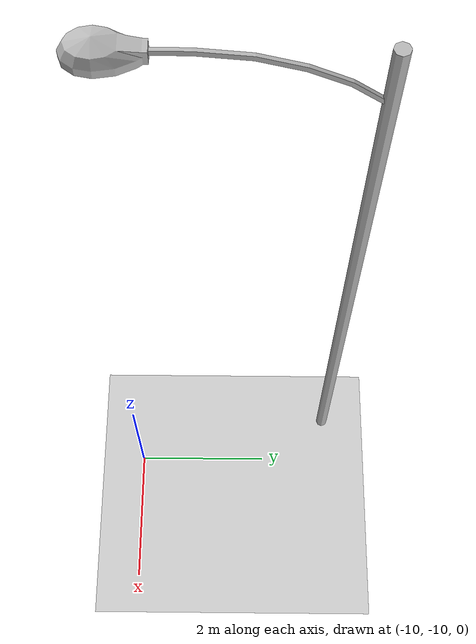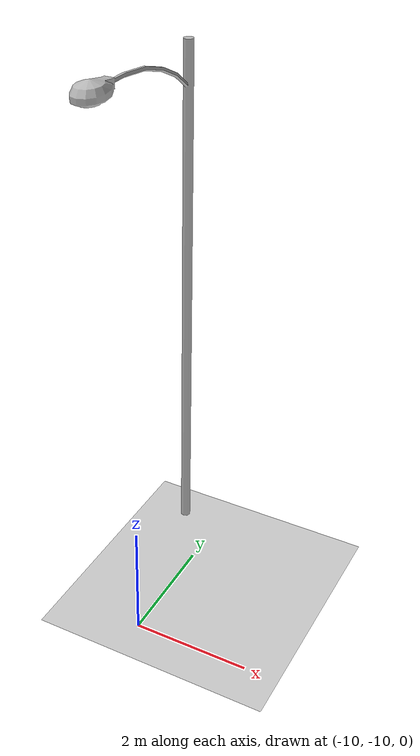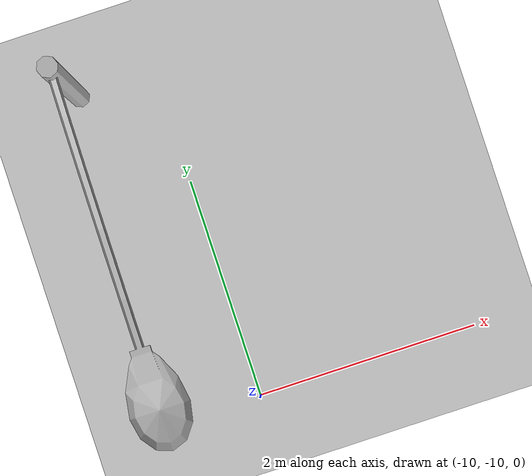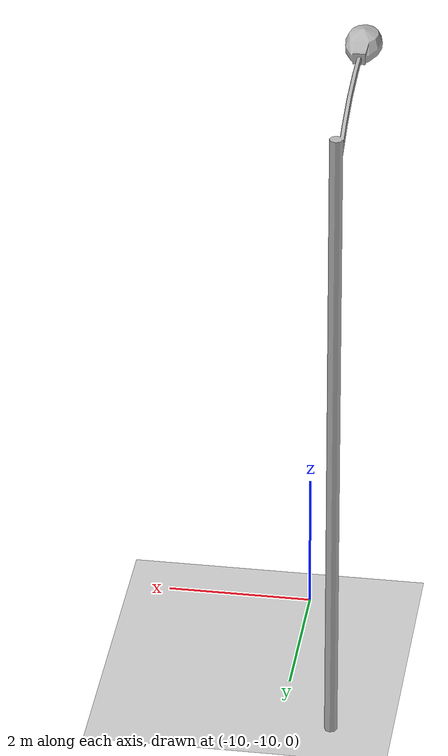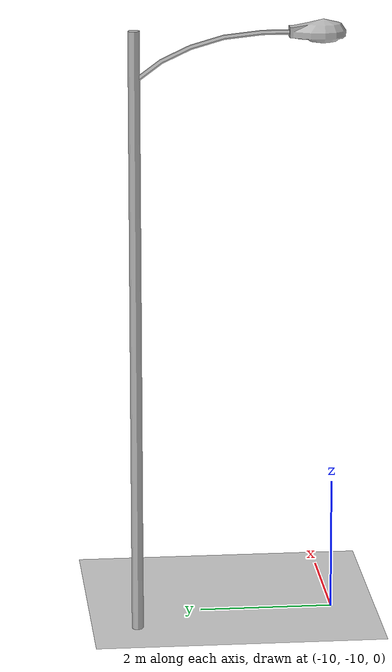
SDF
<sdf version="1.6">
 <world name="default">
  <model name="ground_plane">
   <pose>-10.2 24.7 0 0 -0 0</pose>
   <static>1</static>
   <link name="link">
    <collision name="collision">
     <geometry><plane><normal>0 0 1</normal><size>100 100</size></plane></geometry>
     <surface><friction><ode><mu>100</mu><mu2>50</mu2></ode></friction></surface>
    </collision>
    <visual name="visual">
     <cast_shadows>0</cast_shadows>
     <geometry><plane><normal>0 0 1</normal><size>100 100</size></plane></geometry>
     <material>
      <script><uri>file://media/materials/scripts/gazebo.material</uri><name>Gazebo/Grey</name></script>
     </material>
    </visual>
   </link>
  </model>
  <model name="Lamp Post">
   <static>1</static>
   <link name="link">
    <collision name="collision">
     <geometry><mesh><uri>model://lamp_post/meshes/lamp_post.dae</uri><scale>3 3 3</scale></mesh></geometry>
    </collision>
    <visual name="visual">
     <geometry><mesh><uri>model://lamp_post/meshes/lamp_post.dae</uri><scale>3 3 3</scale></mesh></geometry>
    </visual>
   </link>
   <pose>-10.7 -7 0 0 -0 0</pose>
  </model>
 </world>
</sdf>
